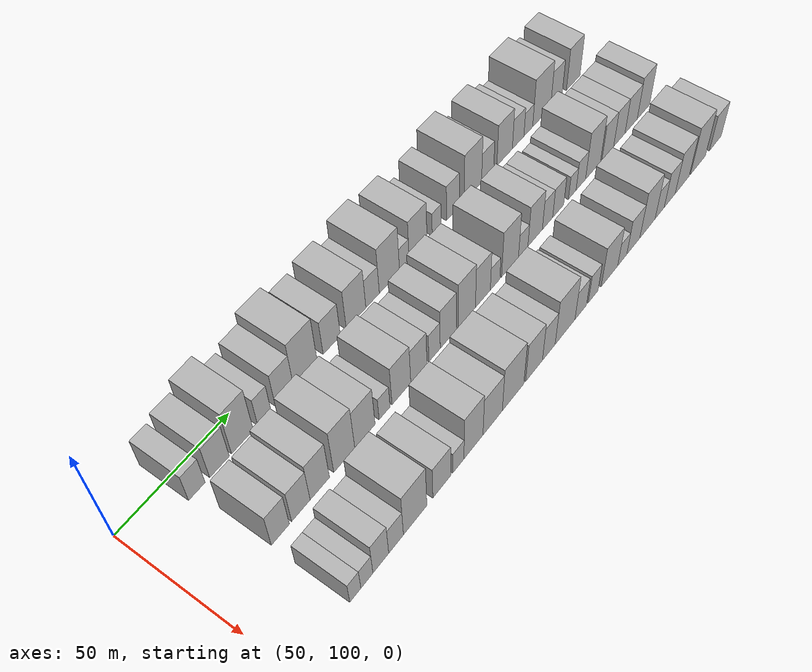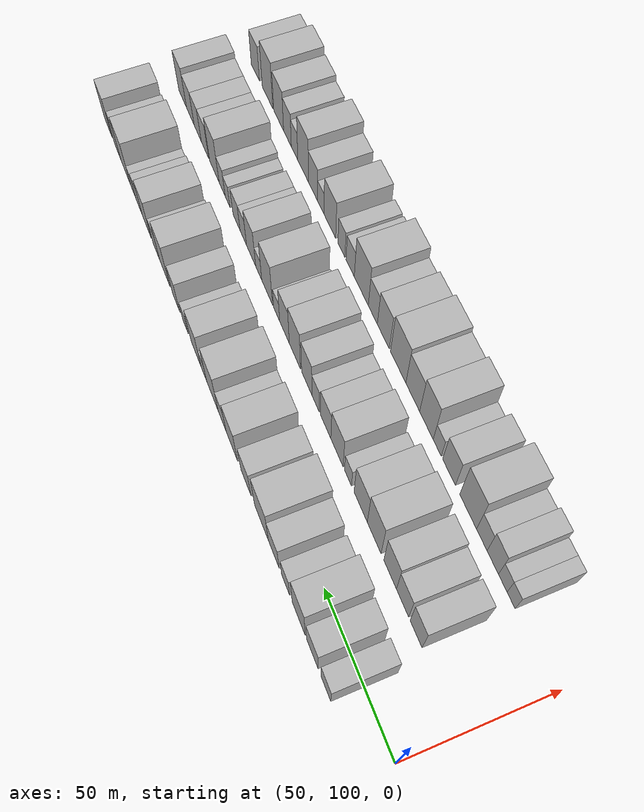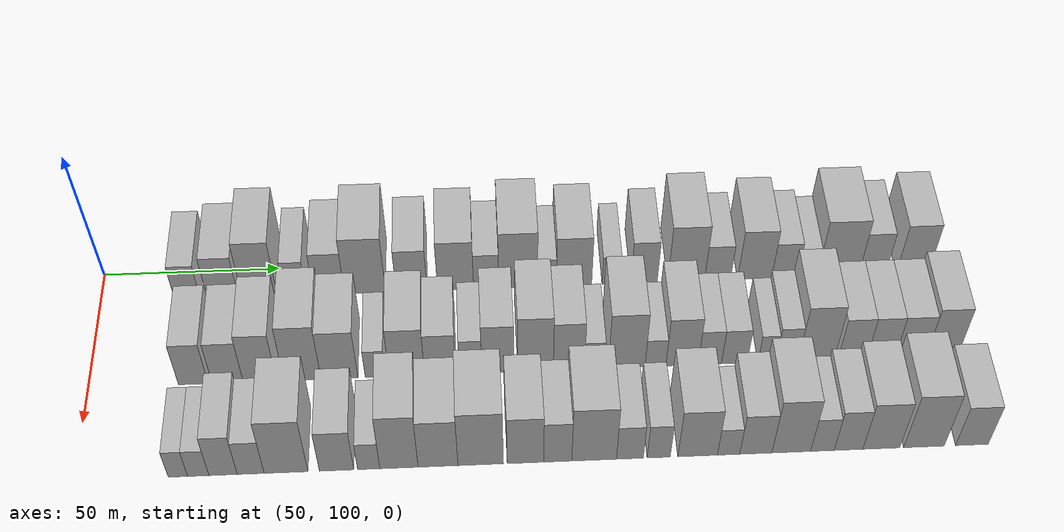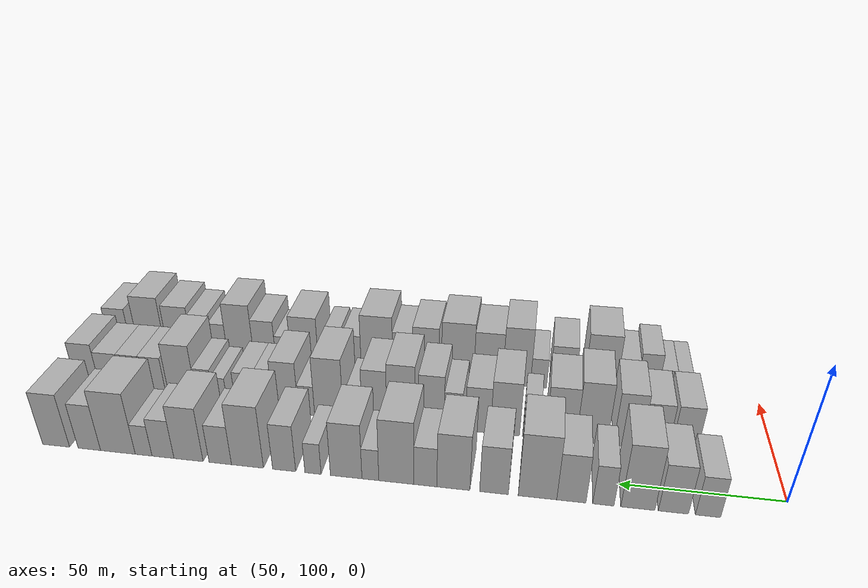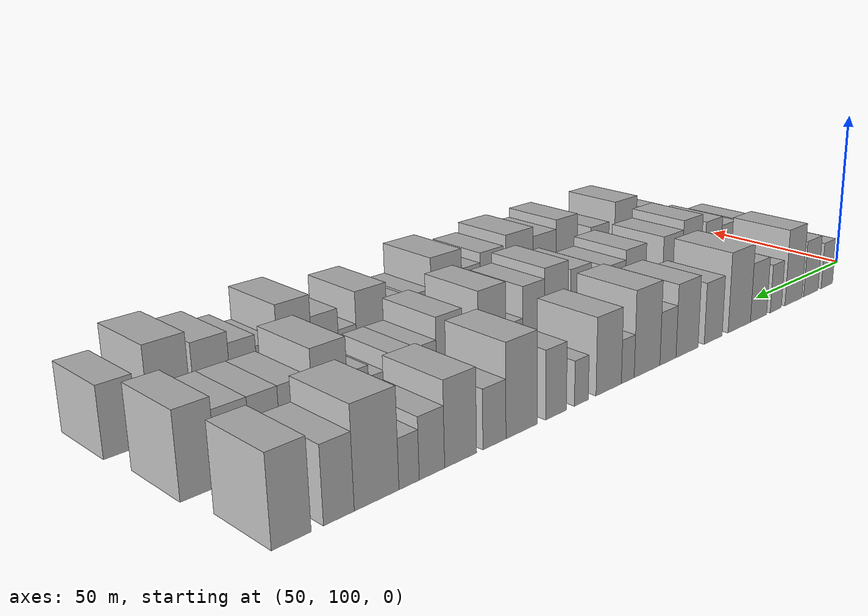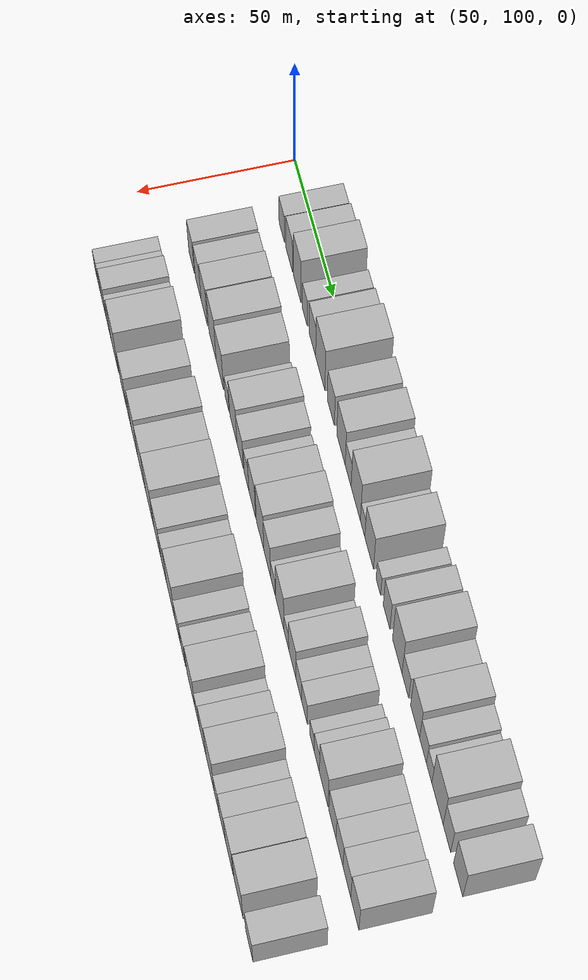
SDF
<sdf version="1.6">
 <world name="default">
  <model name="building_44">
   <static>1</static>
   <pose>50.0000 124.5853 0 0.000000 0.000000 0.000000</pose>
   <link name="link">
    <pose>0 0 7.50 0 0 0</pose>
    <collision name="collision"><geometry><box><size>20.0000 7.2259 15.0000</size></box></geometry></collision>
    <visual name="visual">
     <cast_shadows>0</cast_shadows>
     <geometry><box><size>20.0000 7.2259 15.0000</size></box></geometry>
     <material>
      <script>
       <uri>model://HANNAS_wall/materials/scripts</uri>
       <uri>model://HANNAS_wall/materials/textures</uri>
       <name>vrc/HANNAS_wall</name>
      </script>
     </material>
    </visual>
   </link>
  </model>
  <model name="building_45">
   <static>1</static>
   <pose>50.0000 134.5756 0 0.000000 0.000000 0.000000</pose>
   <link name="link">
    <pose>0 0 9.00 0 0 0</pose>
    <collision name="collision"><geometry><box><size>20.0000 8.7546 18.0000</size></box></geometry></collision>
    <visual name="visual">
     <cast_shadows>0</cast_shadows>
     <geometry><box><size>20.0000 8.7546 18.0000</size></box></geometry>
     <material>
      <script>
       <uri>model://HANNAS_wall/materials/scripts</uri>
       <uri>model://HANNAS_wall/materials/textures</uri>
       <name>vrc/HANNAS_wall</name>
      </script>
     </material>
    </visual>
   </link>
  </model>
  <model name="building_46">
   <static>1</static>
   <pose>50.0000 144.9506 0 0.000000 0.000000 0.000000</pose>
   <link name="link">
    <pose>0 0 12.00 0 0 0</pose>
    <collision name="collision"><geometry><box><size>20.0000 9.9954 24.0000</size></box></geometry></collision>
    <visual name="visual">
     <cast_shadows>0</cast_shadows>
     <geometry><box><size>20.0000 9.9954 24.0000</size></box></geometry>
     <material>
      <script>
       <uri>model://HANNAS_wall/materials/scripts</uri>
       <uri>model://HANNAS_wall/materials/textures</uri>
       <name>vrc/HANNAS_wall</name>
      </script>
     </material>
    </visual>
   </link>
  </model>
  <model name="building_47">
   <static>1</static>
   <pose>50.0000 155.1019 0 0.000000 0.000000 0.000000</pose>
   <link name="link">
    <pose>0 0 7.50 0 0 0</pose>
    <collision name="collision"><geometry><box><size>20.0000 6.3071 15.0000</size></box></geometry></collision>
    <visual name="visual">
     <cast_shadows>0</cast_shadows>
     <geometry><box><size>20.0000 6.3071 15.0000</size></box></geometry>
     <material>
      <script>
       <uri>model://HANNAS_wall/materials/scripts</uri>
       <uri>model://HANNAS_wall/materials/textures</uri>
       <name>vrc/HANNAS_wall</name>
      </script>
     </material>
    </visual>
   </link>
  </model>
  <model name="building_48">
   <static>1</static>
   <pose>50.0000 164.6238 0 0.000000 0.000000 0.000000</pose>
   <link name="link">
    <pose>0 0 9.00 0 0 0</pose>
    <collision name="collision"><geometry><box><size>20.0000 8.7367 18.0000</size></box></geometry></collision>
    <visual name="visual">
     <cast_shadows>0</cast_shadows>
     <geometry><box><size>20.0000 8.7367 18.0000</size></box></geometry>
     <material>
      <script>
       <uri>model://HANNAS_wall/materials/scripts</uri>
       <uri>model://HANNAS_wall/materials/textures</uri>
       <name>vrc/HANNAS_wall</name>
      </script>
     </material>
    </visual>
   </link>
  </model>
  <model name="building_49">
   <static>1</static>
   <pose>50.0000 174.8105 0 0.000000 0.000000 0.000000</pose>
   <link name="link">
    <pose>0 0 12.00 0 0 0</pose>
    <collision name="collision"><geometry><box><size>20.0000 11.6369 24.0000</size></box></geometry></collision>
    <visual name="visual">
     <cast_shadows>0</cast_shadows>
     <geometry><box><size>20.0000 11.6369 24.0000</size></box></geometry>
     <material>
      <script>
       <uri>model://HANNAS_wall/materials/scripts</uri>
       <uri>model://HANNAS_wall/materials/textures</uri>
       <name>vrc/HANNAS_wall</name>
      </script>
     </material>
    </visual>
   </link>
  </model>
  <model name="building_50">
   <static>1</static>
   <pose>50.0000 188.0276 0 0.000000 0.000000 0.000000</pose>
   <link name="link">
    <pose>0 0 9.00 0 0 0</pose>
    <collision name="collision"><geometry><box><size>20.0000 8.7973 18.0000</size></box></geometry></collision>
    <visual name="visual">
     <cast_shadows>0</cast_shadows>
     <geometry><box><size>20.0000 8.7973 18.0000</size></box></geometry>
     <material>
      <script>
       <uri>model://HANNAS_wall/materials/scripts</uri>
       <uri>model://HANNAS_wall/materials/textures</uri>
       <name>vrc/HANNAS_wall</name>
      </script>
     </material>
    </visual>
   </link>
  </model>
  <model name="building_51">
   <static>1</static>
   <pose>50.0000 200.5578 0 0.000000 0.000000 0.000000</pose>
   <link name="link">
    <pose>0 0 10.50 0 0 0</pose>
    <collision name="collision"><geometry><box><size>20.0000 10.2631 21.0000</size></box></geometry></collision>
    <visual name="visual">
     <cast_shadows>0</cast_shadows>
     <geometry><box><size>20.0000 10.2631 21.0000</size></box></geometry>
     <material>
      <script>
       <uri>model://HANNAS_wall/materials/scripts</uri>
       <uri>model://HANNAS_wall/materials/textures</uri>
       <name>vrc/HANNAS_wall</name>
      </script>
     </material>
    </visual>
   </link>
  </model>
  <model name="building_52">
   <static>1</static>
   <pose>50.0000 209.2816 0 0.000000 0.000000 0.000000</pose>
   <link name="link">
    <pose>0 0 7.50 0 0 0</pose>
    <collision name="collision"><geometry><box><size>20.0000 7.1846 15.0000</size></box></geometry></collision>
    <visual name="visual">
     <cast_shadows>0</cast_shadows>
     <geometry><box><size>20.0000 7.1846 15.0000</size></box></geometry>
     <material>
      <script>
       <uri>model://HANNAS_wall/materials/scripts</uri>
       <uri>model://HANNAS_wall/materials/textures</uri>
       <name>vrc/HANNAS_wall</name>
      </script>
     </material>
    </visual>
   </link>
  </model>
  <model name="building_53">
   <static>1</static>
   <pose>50.0000 218.3933 0 0.000000 0.000000 0.000000</pose>
   <link name="link">
    <pose>0 0 12.00 0 0 0</pose>
    <collision name="collision"><geometry><box><size>20.0000 11.0388 24.0000</size></box></geometry></collision>
    <visual name="visual">
     <cast_shadows>0</cast_shadows>
     <geometry><box><size>20.0000 11.0388 24.0000</size></box></geometry>
     <material>
      <script>
       <uri>model://HANNAS_wall/materials/scripts</uri>
       <uri>model://HANNAS_wall/materials/textures</uri>
       <name>vrc/HANNAS_wall</name>
      </script>
     </material>
    </visual>
   </link>
  </model>
  <model name="building_54">
   <static>1</static>
   <pose>50.0000 226.5840 0 0.000000 0.000000 0.000000</pose>
   <link name="link">
    <pose>0 0 6.00 0 0 0</pose>
    <collision name="collision"><geometry><box><size>20.0000 5.3427 12.0000</size></box></geometry></collision>
    <visual name="visual">
     <cast_shadows>0</cast_shadows>
     <geometry><box><size>20.0000 5.3427 12.0000</size></box></geometry>
     <material>
      <script>
       <uri>model://HANNAS_wall/materials/scripts</uri>
       <uri>model://HANNAS_wall/materials/textures</uri>
       <name>vrc/HANNAS_wall</name>
      </script>
     </material>
    </visual>
   </link>
  </model>
  <model name="building_55">
   <static>1</static>
   <pose>50.0000 234.3054 0 0.000000 0.000000 0.000000</pose>
   <link name="link">
    <pose>0 0 10.50 0 0 0</pose>
    <collision name="collision"><geometry><box><size>20.0000 10.1000 21.0000</size></box></geometry></collision>
    <visual name="visual">
     <cast_shadows>0</cast_shadows>
     <geometry><box><size>20.0000 10.1000 21.0000</size></box></geometry>
     <material>
      <script>
       <uri>model://HANNAS_wall/materials/scripts</uri>
       <uri>model://HANNAS_wall/materials/textures</uri>
       <name>vrc/HANNAS_wall</name>
      </script>
     </material>
    </visual>
   </link>
  </model>
  <model name="building_56">
   <static>1</static>
   <pose>50.0000 244.9776 0 0.000000 0.000000 0.000000</pose>
   <link name="link">
    <pose>0 0 6.00 0 0 0</pose>
    <collision name="collision"><geometry><box><size>20.0000 5.2444 12.0000</size></box></geometry></collision>
    <visual name="visual">
     <cast_shadows>0</cast_shadows>
     <geometry><box><size>20.0000 5.2444 12.0000</size></box></geometry>
     <material>
      <script>
       <uri>model://HANNAS_wall/materials/scripts</uri>
       <uri>model://HANNAS_wall/materials/textures</uri>
       <name>vrc/HANNAS_wall</name>
      </script>
     </material>
    </visual>
   </link>
  </model>
  <model name="building_57">
   <static>1</static>
   <pose>50.0000 254.3668 0 0.000000 0.000000 0.000000</pose>
   <link name="link">
    <pose>0 0 9.00 0 0 0</pose>
    <collision name="collision"><geometry><box><size>20.0000 7.5339 18.0000</size></box></geometry></collision>
    <visual name="visual">
     <cast_shadows>0</cast_shadows>
     <geometry><box><size>20.0000 7.5339 18.0000</size></box></geometry>
     <material>
      <script>
       <uri>model://HANNAS_wall/materials/scripts</uri>
       <uri>model://HANNAS_wall/materials/textures</uri>
       <name>vrc/HANNAS_wall</name>
      </script>
     </material>
    </visual>
   </link>
  </model>
  <model name="building_58">
   <static>1</static>
   <pose>50.0000 266.4275 0 0.000000 0.000000 0.000000</pose>
   <link name="link">
    <pose>0 0 12.00 0 0 0</pose>
    <collision name="collision"><geometry><box><size>20.0000 10.5876 24.0000</size></box></geometry></collision>
    <visual name="visual">
     <cast_shadows>0</cast_shadows>
     <geometry><box><size>20.0000 10.5876 24.0000</size></box></geometry>
     <material>
      <script>
       <uri>model://HANNAS_wall/materials/scripts</uri>
       <uri>model://HANNAS_wall/materials/textures</uri>
       <name>vrc/HANNAS_wall</name>
      </script>
     </material>
    </visual>
   </link>
  </model>
  <model name="building_59">
   <static>1</static>
   <pose>50.0000 275.4613 0 0.000000 0.000000 0.000000</pose>
   <link name="link">
    <pose>0 0 7.50 0 0 0</pose>
    <collision name="collision"><geometry><box><size>20.0000 7.4800 15.0000</size></box></geometry></collision>
    <visual name="visual">
     <cast_shadows>0</cast_shadows>
     <geometry><box><size>20.0000 7.4800 15.0000</size></box></geometry>
     <material>
      <script>
       <uri>model://HANNAS_wall/materials/scripts</uri>
       <uri>model://HANNAS_wall/materials/textures</uri>
       <name>vrc/HANNAS_wall</name>
      </script>
     </material>
    </visual>
   </link>
  </model>
  <model name="building_60">
   <static>1</static>
   <pose>50.0000 286.1093 0 0.000000 0.000000 0.000000</pose>
   <link name="link">
    <pose>0 0 10.50 0 0 0</pose>
    <collision name="collision"><geometry><box><size>20.0000 9.8159 21.0000</size></box></geometry></collision>
    <visual name="visual">
     <cast_shadows>0</cast_shadows>
     <geometry><box><size>20.0000 9.8159 21.0000</size></box></geometry>
     <material>
      <script>
       <uri>model://HANNAS_wall/materials/scripts</uri>
       <uri>model://HANNAS_wall/materials/textures</uri>
       <name>vrc/HANNAS_wall</name>
      </script>
     </material>
    </visual>
   </link>
  </model>
  <model name="building_61">
   <static>1</static>
   <pose>50.0000 294.7434 0 0.000000 0.000000 0.000000</pose>
   <link name="link">
    <pose>0 0 7.50 0 0 0</pose>
    <collision name="collision"><geometry><box><size>20.0000 7.4524 15.0000</size></box></geometry></collision>
    <visual name="visual">
     <cast_shadows>0</cast_shadows>
     <geometry><box><size>20.0000 7.4524 15.0000</size></box></geometry>
     <material>
      <script>
       <uri>model://HANNAS_wall/materials/scripts</uri>
       <uri>model://HANNAS_wall/materials/textures</uri>
       <name>vrc/HANNAS_wall</name>
      </script>
     </material>
    </visual>
   </link>
  </model>
  <model name="building_62">
   <static>1</static>
   <pose>50.0000 301.3308 0 0.000000 0.000000 0.000000</pose>
   <link name="link">
    <pose>0 0 6.00 0 0 0</pose>
    <collision name="collision"><geometry><box><size>20.0000 5.7223 12.0000</size></box></geometry></collision>
    <visual name="visual">
     <cast_shadows>0</cast_shadows>
     <geometry><box><size>20.0000 5.7223 12.0000</size></box></geometry>
     <material>
      <script>
       <uri>model://HANNAS_wall/materials/scripts</uri>
       <uri>model://HANNAS_wall/materials/textures</uri>
       <name>vrc/HANNAS_wall</name>
      </script>
     </material>
    </visual>
   </link>
  </model>
  <model name="building_63">
   <static>1</static>
   <pose>50.0000 310.1790 0 0.000000 0.000000 0.000000</pose>
   <link name="link">
    <pose>0 0 12.00 0 0 0</pose>
    <collision name="collision"><geometry><box><size>20.0000 11.9743 24.0000</size></box></geometry></collision>
    <visual name="visual">
     <cast_shadows>0</cast_shadows>
     <geometry><box><size>20.0000 11.9743 24.0000</size></box></geometry>
     <material>
      <script>
       <uri>model://HANNAS_wall/materials/scripts</uri>
       <uri>model://HANNAS_wall/materials/textures</uri>
       <name>vrc/HANNAS_wall</name>
      </script>
     </material>
    </visual>
   </link>
  </model>
  <model name="building_64">
   <static>1</static>
   <pose>50.0000 320.0730 0 0.000000 0.000000 0.000000</pose>
   <link name="link">
    <pose>0 0 9.00 0 0 0</pose>
    <collision name="collision"><geometry><box><size>20.0000 7.8136 18.0000</size></box></geometry></collision>
    <visual name="visual">
     <cast_shadows>0</cast_shadows>
     <geometry><box><size>20.0000 7.8136 18.0000</size></box></geometry>
     <material>
      <script>
       <uri>model://HANNAS_wall/materials/scripts</uri>
       <uri>model://HANNAS_wall/materials/textures</uri>
       <name>vrc/HANNAS_wall</name>
      </script>
     </material>
    </visual>
   </link>
  </model>
  <model name="building_65">
   <static>1</static>
   <pose>50.0000 331.6961 0 0.000000 0.000000 0.000000</pose>
   <link name="link">
    <pose>0 0 10.50 0 0 0</pose>
    <collision name="collision"><geometry><box><size>20.0000 9.4327 21.0000</size></box></geometry></collision>
    <visual name="visual">
     <cast_shadows>0</cast_shadows>
     <geometry><box><size>20.0000 9.4327 21.0000</size></box></geometry>
     <material>
      <script>
       <uri>model://HANNAS_wall/materials/scripts</uri>
       <uri>model://HANNAS_wall/materials/textures</uri>
       <name>vrc/HANNAS_wall</name>
      </script>
     </material>
    </visual>
   </link>
  </model>
  <model name="building_111">
   <static>1</static>
   <pose>79.0000 128.6256 0 0.000000 0.000000 0.000000</pose>
   <link name="link">
    <pose>0 0 9.00 0 0 0</pose>
    <collision name="collision"><geometry><box><size>20.0000 8.0749 18.0000</size></box></geometry></collision>
    <visual name="visual">
     <cast_shadows>0</cast_shadows>
     <geometry><box><size>20.0000 8.0749 18.0000</size></box></geometry>
     <material>
      <script>
       <uri>model://HANNAS_wall/materials/scripts</uri>
       <uri>model://HANNAS_wall/materials/textures</uri>
       <name>vrc/HANNAS_wall</name>
      </script>
     </material>
    </visual>
   </link>
  </model>
  <model name="building_112">
   <static>1</static>
   <pose>79.0000 137.9036 0 0.000000 0.000000 0.000000</pose>
   <link name="link">
    <pose>0 0 9.00 0 0 0</pose>
    <collision name="collision"><geometry><box><size>20.0000 8.4812 18.0000</size></box></geometry></collision>
    <visual name="visual">
     <cast_shadows>0</cast_shadows>
     <geometry><box><size>20.0000 8.4812 18.0000</size></box></geometry>
     <material>
      <script>
       <uri>model://HANNAS_wall/materials/scripts</uri>
       <uri>model://HANNAS_wall/materials/textures</uri>
       <name>vrc/HANNAS_wall</name>
      </script>
     </material>
    </visual>
   </link>
  </model>
  <model name="building_113">
   <static>1</static>
   <pose>79.0000 146.6654 0 0.000000 0.000000 0.000000</pose>
   <link name="link">
    <pose>0 0 10.50 0 0 0</pose>
    <collision name="collision"><geometry><box><size>20.0000 9.0424 21.0000</size></box></geometry></collision>
    <visual name="visual">
     <cast_shadows>0</cast_shadows>
     <geometry><box><size>20.0000 9.0424 21.0000</size></box></geometry>
     <material>
      <script>
       <uri>model://HANNAS_wall/materials/scripts</uri>
       <uri>model://HANNAS_wall/materials/textures</uri>
       <name>vrc/HANNAS_wall</name>
      </script>
     </material>
    </visual>
   </link>
  </model>
  <model name="building_114">
   <static>1</static>
   <pose>79.0000 158.2455 0 0.000000 0.000000 0.000000</pose>
   <link name="link">
    <pose>0 0 12.00 0 0 0</pose>
    <collision name="collision"><geometry><box><size>20.0000 10.1178 24.0000</size></box></geometry></collision>
    <visual name="visual">
     <cast_shadows>0</cast_shadows>
     <geometry><box><size>20.0000 10.1178 24.0000</size></box></geometry>
     <material>
      <script>
       <uri>model://HANNAS_wall/materials/scripts</uri>
       <uri>model://HANNAS_wall/materials/textures</uri>
       <name>vrc/HANNAS_wall</name>
      </script>
     </material>
    </visual>
   </link>
  </model>
  <model name="building_115">
   <static>1</static>
   <pose>79.0000 168.3260 0 0.000000 0.000000 0.000000</pose>
   <link name="link">
    <pose>0 0 10.50 0 0 0</pose>
    <collision name="collision"><geometry><box><size>20.0000 10.0434 21.0000</size></box></geometry></collision>
    <visual name="visual">
     <cast_shadows>0</cast_shadows>
     <geometry><box><size>20.0000 10.0434 21.0000</size></box></geometry>
     <material>
      <script>
       <uri>model://HANNAS_wall/materials/scripts</uri>
       <uri>model://HANNAS_wall/materials/textures</uri>
       <name>vrc/HANNAS_wall</name>
      </script>
     </material>
    </visual>
   </link>
  </model>
  <model name="building_116">
   <static>1</static>
   <pose>79.0000 178.1081 0 0.000000 0.000000 0.000000</pose>
   <link name="link">
    <pose>0 0 6.00 0 0 0</pose>
    <collision name="collision"><geometry><box><size>20.0000 5.5209 12.0000</size></box></geometry></collision>
    <visual name="visual">
     <cast_shadows>0</cast_shadows>
     <geometry><box><size>20.0000 5.5209 12.0000</size></box></geometry>
     <material>
      <script>
       <uri>model://HANNAS_wall/materials/scripts</uri>
       <uri>model://HANNAS_wall/materials/textures</uri>
       <name>vrc/HANNAS_wall</name>
      </script>
     </material>
    </visual>
   </link>
  </model>
  <model name="building_117">
   <static>1</static>
   <pose>79.0000 186.7174 0 0.000000 0.000000 0.000000</pose>
   <link name="link">
    <pose>0 0 10.50 0 0 0</pose>
    <collision name="collision"><geometry><box><size>20.0000 9.6976 21.0000</size></box></geometry></collision>
    <visual name="visual">
     <cast_shadows>0</cast_shadows>
     <geometry><box><size>20.0000 9.6976 21.0000</size></box></geometry>
     <material>
      <script>
       <uri>model://HANNAS_wall/materials/scripts</uri>
       <uri>model://HANNAS_wall/materials/textures</uri>
       <name>vrc/HANNAS_wall</name>
      </script>
     </material>
    </visual>
   </link>
  </model>
  <model name="building_118">
   <static>1</static>
   <pose>79.0000 195.8391 0 0.000000 0.000000 0.000000</pose>
   <link name="link">
    <pose>0 0 9.00 0 0 0</pose>
    <collision name="collision"><geometry><box><size>20.0000 8.5459 18.0000</size></box></geometry></collision>
    <visual name="visual">
     <cast_shadows>0</cast_shadows>
     <geometry><box><size>20.0000 8.5459 18.0000</size></box></geometry>
     <material>
      <script>
       <uri>model://HANNAS_wall/materials/scripts</uri>
       <uri>model://HANNAS_wall/materials/textures</uri>
       <name>vrc/HANNAS_wall</name>
      </script>
     </material>
    </visual>
   </link>
  </model>
  <model name="building_119">
   <static>1</static>
   <pose>79.0000 204.1731 0 0.000000 0.000000 0.000000</pose>
   <link name="link">
    <pose>0 0 7.50 0 0 0</pose>
    <collision name="collision"><geometry><box><size>20.0000 6.1221 15.0000</size></box></geometry></collision>
    <visual name="visual">
     <cast_shadows>0</cast_shadows>
     <geometry><box><size>20.0000 6.1221 15.0000</size></box></geometry>
     <material>
      <script>
       <uri>model://HANNAS_wall/materials/scripts</uri>
       <uri>model://HANNAS_wall/materials/textures</uri>
       <name>vrc/HANNAS_wall</name>
      </script>
     </material>
    </visual>
   </link>
  </model>
  <model name="building_120">
   <static>1</static>
   <pose>79.0000 211.6322 0 0.000000 0.000000 0.000000</pose>
   <link name="link">
    <pose>0 0 10.50 0 0 0</pose>
    <collision name="collision"><geometry><box><size>20.0000 8.7960 21.0000</size></box></geometry></collision>
    <visual name="visual">
     <cast_shadows>0</cast_shadows>
     <geometry><box><size>20.0000 8.7960 21.0000</size></box></geometry>
     <material>
      <script>
       <uri>model://HANNAS_wall/materials/scripts</uri>
       <uri>model://HANNAS_wall/materials/textures</uri>
       <name>vrc/HANNAS_wall</name>
      </script>
     </material>
    </visual>
   </link>
  </model>
  <model name="building_121">
   <static>1</static>
   <pose>79.0000 221.8978 0 0.000000 0.000000 0.000000</pose>
   <link name="link">
    <pose>0 0 12.00 0 0 0</pose>
    <collision name="collision"><geometry><box><size>20.0000 9.7352 24.0000</size></box></geometry></collision>
    <visual name="visual">
     <cast_shadows>0</cast_shadows>
     <geometry><box><size>20.0000 9.7352 24.0000</size></box></geometry>
     <material>
      <script>
       <uri>model://HANNAS_wall/materials/scripts</uri>
       <uri>model://HANNAS_wall/materials/textures</uri>
       <name>vrc/HANNAS_wall</name>
      </script>
     </material>
    </visual>
   </link>
  </model>
  <model name="building_122">
   <static>1</static>
   <pose>79.0000 231.0540 0 0.000000 0.000000 0.000000</pose>
   <link name="link">
    <pose>0 0 10.50 0 0 0</pose>
    <collision name="collision"><geometry><box><size>20.0000 8.5772 21.0000</size></box></geometry></collision>
    <visual name="visual">
     <cast_shadows>0</cast_shadows>
     <geometry><box><size>20.0000 8.5772 21.0000</size></box></geometry>
     <material>
      <script>
       <uri>model://HANNAS_wall/materials/scripts</uri>
       <uri>model://HANNAS_wall/materials/textures</uri>
       <name>vrc/HANNAS_wall</name>
      </script>
     </material>
    </visual>
   </link>
  </model>
  <model name="building_123">
   <static>1</static>
   <pose>79.0000 238.1261 0 0.000000 0.000000 0.000000</pose>
   <link name="link">
    <pose>0 0 6.00 0 0 0</pose>
    <collision name="collision"><geometry><box><size>20.0000 5.5669 12.0000</size></box></geometry></collision>
    <visual name="visual">
     <cast_shadows>0</cast_shadows>
     <geometry><box><size>20.0000 5.5669 12.0000</size></box></geometry>
     <material>
      <script>
       <uri>model://HANNAS_wall/materials/scripts</uri>
       <uri>model://HANNAS_wall/materials/textures</uri>
       <name>vrc/HANNAS_wall</name>
      </script>
     </material>
    </visual>
   </link>
  </model>
  <model name="building_124">
   <static>1</static>
   <pose>79.0000 246.9398 0 0.000000 0.000000 0.000000</pose>
   <link name="link">
    <pose>0 0 12.00 0 0 0</pose>
    <collision name="collision"><geometry><box><size>20.0000 10.0607 24.0000</size></box></geometry></collision>
    <visual name="visual">
     <cast_shadows>0</cast_shadows>
     <geometry><box><size>20.0000 10.0607 24.0000</size></box></geometry>
     <material>
      <script>
       <uri>model://HANNAS_wall/materials/scripts</uri>
       <uri>model://HANNAS_wall/materials/textures</uri>
       <name>vrc/HANNAS_wall</name>
      </script>
     </material>
    </visual>
   </link>
  </model>
  <model name="building_125">
   <static>1</static>
   <pose>79.0000 254.8272 0 0.000000 0.000000 0.000000</pose>
   <link name="link">
    <pose>0 0 6.00 0 0 0</pose>
    <collision name="collision"><geometry><box><size>20.0000 5.7142 12.0000</size></box></geometry></collision>
    <visual name="visual">
     <cast_shadows>0</cast_shadows>
     <geometry><box><size>20.0000 5.7142 12.0000</size></box></geometry>
     <material>
      <script>
       <uri>model://HANNAS_wall/materials/scripts</uri>
       <uri>model://HANNAS_wall/materials/textures</uri>
       <name>vrc/HANNAS_wall</name>
      </script>
     </material>
    </visual>
   </link>
  </model>
  <model name="building_126">
   <static>1</static>
   <pose>79.0000 262.1376 0 0.000000 0.000000 0.000000</pose>
   <link name="link">
    <pose>0 0 10.50 0 0 0</pose>
    <collision name="collision"><geometry><box><size>20.0000 8.9065 21.0000</size></box></geometry></collision>
    <visual name="visual">
     <cast_shadows>0</cast_shadows>
     <geometry><box><size>20.0000 8.9065 21.0000</size></box></geometry>
     <material>
      <script>
       <uri>model://HANNAS_wall/materials/scripts</uri>
       <uri>model://HANNAS_wall/materials/textures</uri>
       <name>vrc/HANNAS_wall</name>
      </script>
     </material>
    </visual>
   </link>
  </model>
  <model name="building_127">
   <static>1</static>
   <pose>79.0000 269.8250 0 0.000000 0.000000 0.000000</pose>
   <link name="link">
    <pose>0 0 7.50 0 0 0</pose>
    <collision name="collision"><geometry><box><size>20.0000 6.4684 15.0000</size></box></geometry></collision>
    <visual name="visual">
     <cast_shadows>0</cast_shadows>
     <geometry><box><size>20.0000 6.4684 15.0000</size></box></geometry>
     <material>
      <script>
       <uri>model://HANNAS_wall/materials/scripts</uri>
       <uri>model://HANNAS_wall/materials/textures</uri>
       <name>vrc/HANNAS_wall</name>
      </script>
     </material>
    </visual>
   </link>
  </model>
  <model name="building_128">
   <static>1</static>
   <pose>79.0000 276.5924 0 0.000000 0.000000 0.000000</pose>
   <link name="link">
    <pose>0 0 7.50 0 0 0</pose>
    <collision name="collision"><geometry><box><size>20.0000 7.0664 15.0000</size></box></geometry></collision>
    <visual name="visual">
     <cast_shadows>0</cast_shadows>
     <geometry><box><size>20.0000 7.0664 15.0000</size></box></geometry>
     <material>
      <script>
       <uri>model://HANNAS_wall/materials/scripts</uri>
       <uri>model://HANNAS_wall/materials/textures</uri>
       <name>vrc/HANNAS_wall</name>
      </script>
     </material>
    </visual>
   </link>
  </model>
  <model name="building_129">
   <static>1</static>
   <pose>79.0000 285.5988 0 0.000000 0.000000 0.000000</pose>
   <link name="link">
    <pose>0 0 6.00 0 0 0</pose>
    <collision name="collision"><geometry><box><size>20.0000 4.9465 12.0000</size></box></geometry></collision>
    <visual name="visual">
     <cast_shadows>0</cast_shadows>
     <geometry><box><size>20.0000 4.9465 12.0000</size></box></geometry>
     <material>
      <script>
       <uri>model://HANNAS_wall/materials/scripts</uri>
       <uri>model://HANNAS_wall/materials/textures</uri>
       <name>vrc/HANNAS_wall</name>
      </script>
     </material>
    </visual>
   </link>
  </model>
  <model name="building_130">
   <static>1</static>
   <pose>79.0000 291.1877 0 0.000000 0.000000 0.000000</pose>
   <link name="link">
    <pose>0 0 7.50 0 0 0</pose>
    <collision name="collision"><geometry><box><size>20.0000 6.2313 15.0000</size></box></geometry></collision>
    <visual name="visual">
     <cast_shadows>0</cast_shadows>
     <geometry><box><size>20.0000 6.2313 15.0000</size></box></geometry>
     <material>
      <script>
       <uri>model://HANNAS_wall/materials/scripts</uri>
       <uri>model://HANNAS_wall/materials/textures</uri>
       <name>vrc/HANNAS_wall</name>
      </script>
     </material>
    </visual>
   </link>
  </model>
  <model name="building_131">
   <static>1</static>
   <pose>79.0000 299.3049 0 0.000000 0.000000 0.000000</pose>
   <link name="link">
    <pose>0 0 12.00 0 0 0</pose>
    <collision name="collision"><geometry><box><size>20.0000 10.0030 24.0000</size></box></geometry></collision>
    <visual name="visual">
     <cast_shadows>0</cast_shadows>
     <geometry><box><size>20.0000 10.0030 24.0000</size></box></geometry>
     <material>
      <script>
       <uri>model://HANNAS_wall/materials/scripts</uri>
       <uri>model://HANNAS_wall/materials/textures</uri>
       <name>vrc/HANNAS_wall</name>
      </script>
     </material>
    </visual>
   </link>
  </model>
  <model name="building_132">
   <static>1</static>
   <pose>79.0000 309.3292 0 0.000000 0.000000 0.000000</pose>
   <link name="link">
    <pose>0 0 9.00 0 0 0</pose>
    <collision name="collision"><geometry><box><size>20.0000 8.0458 18.0000</size></box></geometry></collision>
    <visual name="visual">
     <cast_shadows>0</cast_shadows>
     <geometry><box><size>20.0000 8.0458 18.0000</size></box></geometry>
     <material>
      <script>
       <uri>model://HANNAS_wall/materials/scripts</uri>
       <uri>model://HANNAS_wall/materials/textures</uri>
       <name>vrc/HANNAS_wall</name>
      </script>
     </material>
    </visual>
   </link>
  </model>
  <model name="building_133">
   <static>1</static>
   <pose>79.0000 317.2741 0 0.000000 0.000000 0.000000</pose>
   <link name="link">
    <pose>0 0 9.00 0 0 0</pose>
    <collision name="collision"><geometry><box><size>20.0000 7.8440 18.0000</size></box></geometry></collision>
    <visual name="visual">
     <cast_shadows>0</cast_shadows>
     <geometry><box><size>20.0000 7.8440 18.0000</size></box></geometry>
     <material>
      <script>
       <uri>model://HANNAS_wall/materials/scripts</uri>
       <uri>model://HANNAS_wall/materials/textures</uri>
       <name>vrc/HANNAS_wall</name>
      </script>
     </material>
    </visual>
   </link>
  </model>
  <model name="building_134">
   <static>1</static>
   <pose>79.0000 325.5262 0 0.000000 0.000000 0.000000</pose>
   <link name="link">
    <pose>0 0 9.00 0 0 0</pose>
    <collision name="collision"><geometry><box><size>20.0000 8.6602 18.0000</size></box></geometry></collision>
    <visual name="visual">
     <cast_shadows>0</cast_shadows>
     <geometry><box><size>20.0000 8.6602 18.0000</size></box></geometry>
     <material>
      <script>
       <uri>model://HANNAS_wall/materials/scripts</uri>
       <uri>model://HANNAS_wall/materials/textures</uri>
       <name>vrc/HANNAS_wall</name>
      </script>
     </material>
    </visual>
   </link>
  </model>
  <model name="building_135">
   <static>1</static>
   <pose>79.0000 334.2958 0 0.000000 0.000000 0.000000</pose>
   <link name="link">
    <pose>0 0 10.50 0 0 0</pose>
    <collision name="collision"><geometry><box><size>20.0000 8.8791 21.0000</size></box></geometry></collision>
    <visual name="visual">
     <cast_shadows>0</cast_shadows>
     <geometry><box><size>20.0000 8.8791 21.0000</size></box></geometry>
     <material>
      <script>
       <uri>model://HANNAS_wall/materials/scripts</uri>
       <uri>model://HANNAS_wall/materials/textures</uri>
       <name>vrc/HANNAS_wall</name>
      </script>
     </material>
    </visual>
   </link>
  </model>
  <model name="building_189">
   <static>1</static>
   <pose>108.0000 127.0147 0 0.000000 0.000000 0.000000</pose>
   <link name="link">
    <pose>0 0 6.00 0 0 0</pose>
    <collision name="collision"><geometry><box><size>20.0000 5.0304 12.0000</size></box></geometry></collision>
    <visual name="visual">
     <cast_shadows>0</cast_shadows>
     <geometry><box><size>20.0000 5.0304 12.0000</size></box></geometry>
     <material>
      <script>
       <uri>model://HANNAS_wall/materials/scripts</uri>
       <uri>model://HANNAS_wall/materials/textures</uri>
       <name>vrc/HANNAS_wall</name>
      </script>
     </material>
    </visual>
   </link>
  </model>
  <model name="building_190">
   <static>1</static>
   <pose>108.0000 132.2931 0 0.000000 0.000000 0.000000</pose>
   <link name="link">
    <pose>0 0 6.00 0 0 0</pose>
    <collision name="collision"><geometry><box><size>20.0000 5.5263 12.0000</size></box></geometry></collision>
    <visual name="visual">
     <cast_shadows>0</cast_shadows>
     <geometry><box><size>20.0000 5.5263 12.0000</size></box></geometry>
     <material>
      <script>
       <uri>model://HANNAS_wall/materials/scripts</uri>
       <uri>model://HANNAS_wall/materials/textures</uri>
       <name>vrc/HANNAS_wall</name>
      </script>
     </material>
    </visual>
   </link>
  </model>
  <model name="building_191">
   <static>1</static>
   <pose>108.0000 138.7434 0 0.000000 0.000000 0.000000</pose>
   <link name="link">
    <pose>0 0 9.00 0 0 0</pose>
    <collision name="collision"><geometry><box><size>20.0000 7.3743 18.0000</size></box></geometry></collision>
    <visual name="visual">
     <cast_shadows>0</cast_shadows>
     <geometry><box><size>20.0000 7.3743 18.0000</size></box></geometry>
     <material>
      <script>
       <uri>model://HANNAS_wall/materials/scripts</uri>
       <uri>model://HANNAS_wall/materials/textures</uri>
       <name>vrc/HANNAS_wall</name>
      </script>
     </material>
    </visual>
   </link>
  </model>
  <model name="building_192">
   <static>1</static>
   <pose>108.0000 145.9325 0 0.000000 0.000000 0.000000</pose>
   <link name="link">
    <pose>0 0 7.50 0 0 0</pose>
    <collision name="collision"><geometry><box><size>20.0000 7.0038 15.0000</size></box></geometry></collision>
    <visual name="visual">
     <cast_shadows>0</cast_shadows>
     <geometry><box><size>20.0000 7.0038 15.0000</size></box></geometry>
     <material>
      <script>
       <uri>model://HANNAS_wall/materials/scripts</uri>
       <uri>model://HANNAS_wall/materials/textures</uri>
       <name>vrc/HANNAS_wall</name>
      </script>
     </material>
    </visual>
   </link>
  </model>
  <model name="building_193">
   <static>1</static>
   <pose>108.0000 155.1380 0 0.000000 0.000000 0.000000</pose>
   <link name="link">
    <pose>0 0 12.00 0 0 0</pose>
    <collision name="collision"><geometry><box><size>20.0000 11.4071 24.0000</size></box></geometry></collision>
    <visual name="visual">
     <cast_shadows>0</cast_shadows>
     <geometry><box><size>20.0000 11.4071 24.0000</size></box></geometry>
     <material>
      <script>
       <uri>model://HANNAS_wall/materials/scripts</uri>
       <uri>model://HANNAS_wall/materials/textures</uri>
       <name>vrc/HANNAS_wall</name>
      </script>
     </material>
    </visual>
   </link>
  </model>
  <model name="building_194">
   <static>1</static>
   <pose>108.0000 168.3329 0 0.000000 0.000000 0.000000</pose>
   <link name="link">
    <pose>0 0 9.00 0 0 0</pose>
    <collision name="collision"><geometry><box><size>20.0000 8.9828 18.0000</size></box></geometry></collision>
    <visual name="visual">
     <cast_shadows>0</cast_shadows>
     <geometry><box><size>20.0000 8.9828 18.0000</size></box></geometry>
     <material>
      <script>
       <uri>model://HANNAS_wall/materials/scripts</uri>
       <uri>model://HANNAS_wall/materials/textures</uri>
       <name>vrc/HANNAS_wall</name>
      </script>
     </material>
    </visual>
   </link>
  </model>
  <model name="building_195">
   <static>1</static>
   <pose>108.0000 176.7286 0 0.000000 0.000000 0.000000</pose>
   <link name="link">
    <pose>0 0 6.00 0 0 0</pose>
    <collision name="collision"><geometry><box><size>20.0000 5.8085 12.0000</size></box></geometry></collision>
    <visual name="visual">
     <cast_shadows>0</cast_shadows>
     <geometry><box><size>20.0000 5.8085 12.0000</size></box></geometry>
     <material>
      <script>
       <uri>model://HANNAS_wall/materials/scripts</uri>
       <uri>model://HANNAS_wall/materials/textures</uri>
       <name>vrc/HANNAS_wall</name>
      </script>
     </material>
    </visual>
   </link>
  </model>
  <model name="building_196">
   <static>1</static>
   <pose>108.0000 184.6379 0 0.000000 0.000000 0.000000</pose>
   <link name="link">
    <pose>0 0 12.00 0 0 0</pose>
    <collision name="collision"><geometry><box><size>20.0000 10.0101 24.0000</size></box></geometry></collision>
    <visual name="visual">
     <cast_shadows>0</cast_shadows>
     <geometry><box><size>20.0000 10.0101 24.0000</size></box></geometry>
     <material>
      <script>
       <uri>model://HANNAS_wall/materials/scripts</uri>
       <uri>model://HANNAS_wall/materials/textures</uri>
       <name>vrc/HANNAS_wall</name>
      </script>
     </material>
    </visual>
   </link>
  </model>
  <model name="building_197">
   <static>1</static>
   <pose>108.0000 194.8675 0 0.000000 0.000000 0.000000</pose>
   <link name="link">
    <pose>0 0 10.50 0 0 0</pose>
    <collision name="collision"><geometry><box><size>20.0000 10.4490 21.0000</size></box></geometry></collision>
    <visual name="visual">
     <cast_shadows>0</cast_shadows>
     <geometry><box><size>20.0000 10.4490 21.0000</size></box></geometry>
     <material>
      <script>
       <uri>model://HANNAS_wall/materials/scripts</uri>
       <uri>model://HANNAS_wall/materials/textures</uri>
       <name>vrc/HANNAS_wall</name>
      </script>
     </material>
    </visual>
   </link>
  </model>
  <model name="building_198">
   <static>1</static>
   <pose>108.0000 206.0599 0 0.000000 0.000000 0.000000</pose>
   <link name="link">
    <pose>0 0 12.00 0 0 0</pose>
    <collision name="collision"><geometry><box><size>20.0000 11.9359 24.0000</size></box></geometry></collision>
    <visual name="visual">
     <cast_shadows>0</cast_shadows>
     <geometry><box><size>20.0000 11.9359 24.0000</size></box></geometry>
     <material>
      <script>
       <uri>model://HANNAS_wall/materials/scripts</uri>
       <uri>model://HANNAS_wall/materials/textures</uri>
       <name>vrc/HANNAS_wall</name>
      </script>
     </material>
    </visual>
   </link>
  </model>
  <model name="building_199">
   <static>1</static>
   <pose>108.0000 217.8173 0 0.000000 0.000000 0.000000</pose>
   <link name="link">
    <pose>0 0 10.50 0 0 0</pose>
    <collision name="collision"><geometry><box><size>20.0000 9.5789 21.0000</size></box></geometry></collision>
    <visual name="visual">
     <cast_shadows>0</cast_shadows>
     <geometry><box><size>20.0000 9.5789 21.0000</size></box></geometry>
     <material>
      <script>
       <uri>model://HANNAS_wall/materials/scripts</uri>
       <uri>model://HANNAS_wall/materials/textures</uri>
       <name>vrc/HANNAS_wall</name>
      </script>
     </material>
    </visual>
   </link>
  </model>
  <model name="building_200">
   <static>1</static>
   <pose>108.0000 226.3033 0 0.000000 0.000000 0.000000</pose>
   <link name="link">
    <pose>0 0 9.00 0 0 0</pose>
    <collision name="collision"><geometry><box><size>20.0000 7.3932 18.0000</size></box></geometry></collision>
    <visual name="visual">
     <cast_shadows>0</cast_shadows>
     <geometry><box><size>20.0000 7.3932 18.0000</size></box></geometry>
     <material>
      <script>
       <uri>model://HANNAS_wall/materials/scripts</uri>
       <uri>model://HANNAS_wall/materials/textures</uri>
       <name>vrc/HANNAS_wall</name>
      </script>
     </material>
    </visual>
   </link>
  </model>
  <model name="building_201">
   <static>1</static>
   <pose>108.0000 235.8998 0 0.000000 0.000000 0.000000</pose>
   <link name="link">
    <pose>0 0 12.00 0 0 0</pose>
    <collision name="collision"><geometry><box><size>20.0000 11.7996 24.0000</size></box></geometry></collision>
    <visual name="visual">
     <cast_shadows>0</cast_shadows>
     <geometry><box><size>20.0000 11.7996 24.0000</size></box></geometry>
     <material>
      <script>
       <uri>model://HANNAS_wall/materials/scripts</uri>
       <uri>model://HANNAS_wall/materials/textures</uri>
       <name>vrc/HANNAS_wall</name>
      </script>
     </material>
    </visual>
   </link>
  </model>
  <model name="building_202">
   <static>1</static>
   <pose>108.0000 245.3399 0 0.000000 0.000000 0.000000</pose>
   <link name="link">
    <pose>0 0 7.50 0 0 0</pose>
    <collision name="collision"><geometry><box><size>20.0000 7.0806 15.0000</size></box></geometry></collision>
    <visual name="visual">
     <cast_shadows>0</cast_shadows>
     <geometry><box><size>20.0000 7.0806 15.0000</size></box></geometry>
     <material>
      <script>
       <uri>model://HANNAS_wall/materials/scripts</uri>
       <uri>model://HANNAS_wall/materials/textures</uri>
       <name>vrc/HANNAS_wall</name>
      </script>
     </material>
    </visual>
   </link>
  </model>
  <model name="building_203">
   <static>1</static>
   <pose>108.0000 252.9354 0 0.000000 0.000000 0.000000</pose>
   <link name="link">
    <pose>0 0 7.50 0 0 0</pose>
    <collision name="collision"><geometry><box><size>20.0000 6.1105 15.0000</size></box></geometry></collision>
    <visual name="visual">
     <cast_shadows>0</cast_shadows>
     <geometry><box><size>20.0000 6.1105 15.0000</size></box></geometry>
     <material>
      <script>
       <uri>model://HANNAS_wall/materials/scripts</uri>
       <uri>model://HANNAS_wall/materials/textures</uri>
       <name>vrc/HANNAS_wall</name>
      </script>
     </material>
    </visual>
   </link>
  </model>
  <model name="building_204">
   <static>1</static>
   <pose>108.0000 263.2317 0 0.000000 0.000000 0.000000</pose>
   <link name="link">
    <pose>0 0 10.50 0 0 0</pose>
    <collision name="collision"><geometry><box><size>20.0000 10.4821 21.0000</size></box></geometry></collision>
    <visual name="visual">
     <cast_shadows>0</cast_shadows>
     <geometry><box><size>20.0000 10.4821 21.0000</size></box></geometry>
     <material>
      <script>
       <uri>model://HANNAS_wall/materials/scripts</uri>
       <uri>model://HANNAS_wall/materials/textures</uri>
       <name>vrc/HANNAS_wall</name>
      </script>
     </material>
    </visual>
   </link>
  </model>
  <model name="building_205">
   <static>1</static>
   <pose>108.0000 271.4169 0 0.000000 0.000000 0.000000</pose>
   <link name="link">
    <pose>0 0 6.00 0 0 0</pose>
    <collision name="collision"><geometry><box><size>20.0000 5.8882 12.0000</size></box></geometry></collision>
    <visual name="visual">
     <cast_shadows>0</cast_shadows>
     <geometry><box><size>20.0000 5.8882 12.0000</size></box></geometry>
     <material>
      <script>
       <uri>model://HANNAS_wall/materials/scripts</uri>
       <uri>model://HANNAS_wall/materials/textures</uri>
       <name>vrc/HANNAS_wall</name>
      </script>
     </material>
    </visual>
   </link>
  </model>
  <model name="building_206">
   <static>1</static>
   <pose>108.0000 278.6261 0 0.000000 0.000000 0.000000</pose>
   <link name="link">
    <pose>0 0 9.00 0 0 0</pose>
    <collision name="collision"><geometry><box><size>20.0000 8.5302 18.0000</size></box></geometry></collision>
    <visual name="visual">
     <cast_shadows>0</cast_shadows>
     <geometry><box><size>20.0000 8.5302 18.0000</size></box></geometry>
     <material>
      <script>
       <uri>model://HANNAS_wall/materials/scripts</uri>
       <uri>model://HANNAS_wall/materials/textures</uri>
       <name>vrc/HANNAS_wall</name>
      </script>
     </material>
    </visual>
   </link>
  </model>
  <model name="building_207">
   <static>1</static>
   <pose>108.0000 288.0458 0 0.000000 0.000000 0.000000</pose>
   <link name="link">
    <pose>0 0 12.00 0 0 0</pose>
    <collision name="collision"><geometry><box><size>20.0000 10.3092 24.0000</size></box></geometry></collision>
    <visual name="visual">
     <cast_shadows>0</cast_shadows>
     <geometry><box><size>20.0000 10.3092 24.0000</size></box></geometry>
     <material>
      <script>
       <uri>model://HANNAS_wall/materials/scripts</uri>
       <uri>model://HANNAS_wall/materials/textures</uri>
       <name>vrc/HANNAS_wall</name>
      </script>
     </material>
    </visual>
   </link>
  </model>
  <model name="building_208">
   <static>1</static>
   <pose>108.0000 296.3147 0 0.000000 0.000000 0.000000</pose>
   <link name="link">
    <pose>0 0 7.50 0 0 0</pose>
    <collision name="collision"><geometry><box><size>20.0000 6.2284 15.0000</size></box></geometry></collision>
    <visual name="visual">
     <cast_shadows>0</cast_shadows>
     <geometry><box><size>20.0000 6.2284 15.0000</size></box></geometry>
     <material>
      <script>
       <uri>model://HANNAS_wall/materials/scripts</uri>
       <uri>model://HANNAS_wall/materials/textures</uri>
       <name>vrc/HANNAS_wall</name>
      </script>
     </material>
    </visual>
   </link>
  </model>
  <model name="building_209">
   <static>1</static>
   <pose>108.0000 303.2468 0 0.000000 0.000000 0.000000</pose>
   <link name="link">
    <pose>0 0 9.00 0 0 0</pose>
    <collision name="collision"><geometry><box><size>20.0000 7.6359 18.0000</size></box></geometry></collision>
    <visual name="visual">
     <cast_shadows>0</cast_shadows>
     <geometry><box><size>20.0000 7.6359 18.0000</size></box></geometry>
     <material>
      <script>
       <uri>model://HANNAS_wall/materials/scripts</uri>
       <uri>model://HANNAS_wall/materials/textures</uri>
       <name>vrc/HANNAS_wall</name>
      </script>
     </material>
    </visual>
   </link>
  </model>
  <model name="building_210">
   <static>1</static>
   <pose>108.0000 312.0034 0 0.000000 0.000000 0.000000</pose>
   <link name="link">
    <pose>0 0 10.50 0 0 0</pose>
    <collision name="collision"><geometry><box><size>20.0000 9.8773 21.0000</size></box></geometry></collision>
    <visual name="visual">
     <cast_shadows>0</cast_shadows>
     <geometry><box><size>20.0000 9.8773 21.0000</size></box></geometry>
     <material>
      <script>
       <uri>model://HANNAS_wall/materials/scripts</uri>
       <uri>model://HANNAS_wall/materials/textures</uri>
       <name>vrc/HANNAS_wall</name>
      </script>
     </material>
    </visual>
   </link>
  </model>
  <model name="building_211">
   <static>1</static>
   <pose>108.0000 323.3680 0 0.000000 0.000000 0.000000</pose>
   <link name="link">
    <pose>0 0 12.00 0 0 0</pose>
    <collision name="collision"><geometry><box><size>20.0000 10.8520 24.0000</size></box></geometry></collision>
    <visual name="visual">
     <cast_shadows>0</cast_shadows>
     <geometry><box><size>20.0000 10.8520 24.0000</size></box></geometry>
     <material>
      <script>
       <uri>model://HANNAS_wall/materials/scripts</uri>
       <uri>model://HANNAS_wall/materials/textures</uri>
       <name>vrc/HANNAS_wall</name>
      </script>
     </material>
    </visual>
   </link>
  </model>
  <model name="building_212">
   <static>1</static>
   <pose>108.0000 336.1667 0 0.000000 0.000000 0.000000</pose>
   <link name="link">
    <pose>0 0 9.00 0 0 0</pose>
    <collision name="collision"><geometry><box><size>20.0000 8.7453 18.0000</size></box></geometry></collision>
    <visual name="visual">
     <cast_shadows>0</cast_shadows>
     <geometry><box><size>20.0000 8.7453 18.0000</size></box></geometry>
     <material>
      <script>
       <uri>model://HANNAS_wall/materials/scripts</uri>
       <uri>model://HANNAS_wall/materials/textures</uri>
       <name>vrc/HANNAS_wall</name>
      </script>
     </material>
    </visual>
   </link>
  </model>
 </world>
</sdf>
